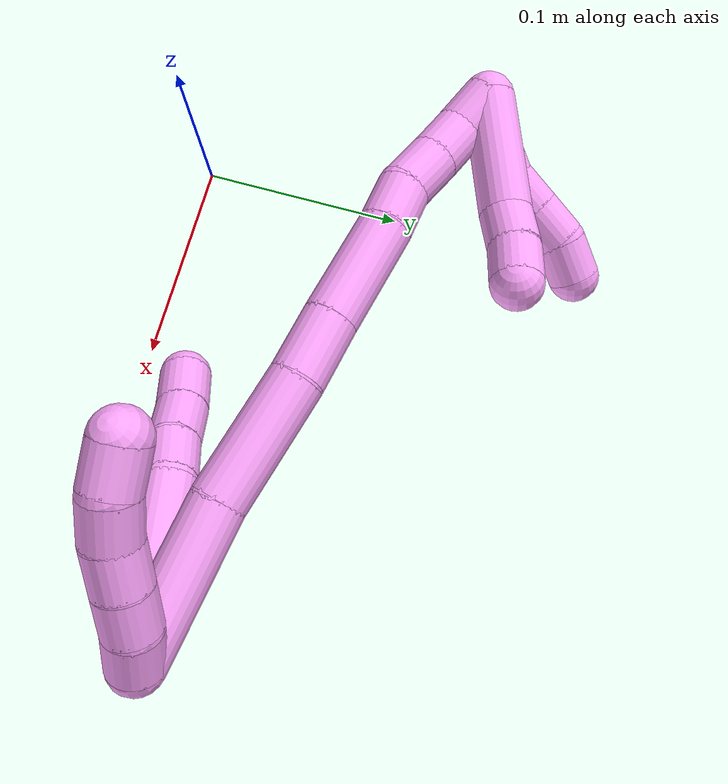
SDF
<sdf version="1.7">
 <world name="default">
  <model name="4">
   <static>0</static>
   <link name="4">
    <collision name="collision-cylinder-e_1_2_8">
     <pose>-0.032118 -0.023851 -0.001517 1.63431 -0.931087 -0.983037</pose>
     <geometry><cylinder><radius>0.0125</radius><length>0.080069</length></cylinder></geometry>
     <surface>
      <friction><ode><mu>1.16</mu><mu2>1.16</mu2><slip1>0</slip1><slip2>0</slip2></ode></friction>
      <contact><ode><kp>1e+06</kp><kd>1</kd><max_vel>0</max_vel><min_depth>0.001</min_depth></ode></contact>
     </surface>
    </collision>
    <visual name="visual-cylinder-e_1_2_8">
     <pose>-0.032118 -0.023851 -0.001517 1.63431 -0.931087 -0.983037</pose>
     <geometry><cylinder><radius>0.0125</radius><length>0.080069</length></cylinder></geometry>
     <material><ambient>1 0.65098 0.996078 1</ambient></material>
    </visual>
    <collision name="collision-cylinder-e_2_8_9">
     <pose>-0.07164 -0.055131 -0.005438 1.88378 -0.758741 -1.00271</pose>
     <geometry><cylinder><radius>0.0125</radius><length>0.021522</length></cylinder></geometry>
     <surface>
      <friction><ode><mu>1.16</mu><mu2>1.16</mu2><slip1>0</slip1><slip2>0</slip2></ode></friction>
      <contact><ode><kp>1e+06</kp><kd>1</kd><max_vel>0</max_vel><min_depth>0.001</min_depth></ode></contact>
     </surface>
    </collision>
    <visual name="visual-cylinder-e_2_8_9">
     <pose>-0.07164 -0.055131 -0.005438 1.88378 -0.758741 -1.00271</pose>
     <geometry><cylinder><radius>0.0125</radius><length>0.021522</length></cylinder></geometry>
     <material><ambient>1 0.65098 0.996078 1</ambient></material>
    </visual>
    <collision name="collision-cylinder-e_3_9_10">
     <pose>-0.08735 -0.070013 -0.012108 2.0906 -0.768835 -1.21827</pose>
     <geometry><cylinder><radius>0.0125</radius><length>0.023893</length></cylinder></geometry>
     <surface>
      <friction><ode><mu>1.16</mu><mu2>1.16</mu2><slip1>0</slip1><slip2>0</slip2></ode></friction>
      <contact><ode><kp>1e+06</kp><kd>1</kd><max_vel>0</max_vel><min_depth>0.001</min_depth></ode></contact>
     </surface>
    </collision>
    <visual name="visual-cylinder-e_3_9_10">
     <pose>-0.08735 -0.070013 -0.012108 2.0906 -0.768835 -1.21827</pose>
     <geometry><cylinder><radius>0.0125</radius><length>0.023893</length></cylinder></geometry>
     <material><ambient>1 0.65098 0.996078 1</ambient></material>
    </visual>
    <collision name="collision-cylinder-e_4_10_6">
     <pose>-0.103797 -0.085921 -0.019907 1.9667 -0.726295 -1.03717</pose>
     <geometry><cylinder><radius>0.0125</radius><length>0.024517</length></cylinder></geometry>
     <surface>
      <friction><ode><mu>1.16</mu><mu2>1.16</mu2><slip1>0</slip1><slip2>0</slip2></ode></friction>
      <contact><ode><kp>1e+06</kp><kd>1</kd><max_vel>0</max_vel><min_depth>0.001</min_depth></ode></contact>
     </surface>
    </collision>
    <visual name="visual-cylinder-e_4_10_6">
     <pose>-0.103797 -0.085921 -0.019907 1.9667 -0.726295 -1.03717</pose>
     <geometry><cylinder><radius>0.0125</radius><length>0.024517</length></cylinder></geometry>
     <material><ambient>1 0.65098 0.996078 1</ambient></material>
    </visual>
    <collision name="collision-cylinder-e_1_2_11">
     <pose>-0.004356 -0.000971 0.008949 0.108111 -0.45066 -0.024804</pose>
     <geometry><cylinder><radius>0.0125</radius><length>0.02</length></cylinder></geometry>
     <surface>
      <friction><ode><mu>1.16</mu><mu2>1.16</mu2><slip1>0</slip1><slip2>0</slip2></ode></friction>
      <contact><ode><kp>1e+06</kp><kd>1</kd><max_vel>0</max_vel><min_depth>0.001</min_depth></ode></contact>
     </surface>
    </collision>
    <visual name="visual-cylinder-e_1_2_11">
     <pose>-0.004356 -0.000971 0.008949 0.108111 -0.45066 -0.024804</pose>
     <geometry><cylinder><radius>0.0125</radius><length>0.02</length></cylinder></geometry>
     <material><ambient>1 0.65098 0.996078 1</ambient></material>
    </visual>
    <collision name="collision-cylinder-e_2_11_12">
     <pose>-0.012997 -0.00475 0.026486 0.315935 -0.442909 -0.071699</pose>
     <geometry><cylinder><radius>0.0125</radius><length>0.02</length></cylinder></geometry>
     <surface>
      <friction><ode><mu>1.16</mu><mu2>1.16</mu2><slip1>0</slip1><slip2>0</slip2></ode></friction>
      <contact><ode><kp>1e+06</kp><kd>1</kd><max_vel>0</max_vel><min_depth>0.001</min_depth></ode></contact>
     </surface>
    </collision>
    <visual name="visual-cylinder-e_2_11_12">
     <pose>-0.012997 -0.00475 0.026486 0.315935 -0.442909 -0.071699</pose>
     <geometry><cylinder><radius>0.0125</radius><length>0.02</length></cylinder></geometry>
     <material><ambient>1 0.65098 0.996078 1</ambient></material>
    </visual>
    <collision name="collision-cylinder-e_3_12_13">
     <pose>-0.021846 -0.011069 0.04325 0.405747 -0.473844 -0.099255</pose>
     <geometry><cylinder><radius>0.0125</radius><length>0.02</length></cylinder></geometry>
     <surface>
      <friction><ode><mu>1.16</mu><mu2>1.16</mu2><slip1>0</slip1><slip2>0</slip2></ode></friction>
      <contact><ode><kp>1e+06</kp><kd>1</kd><max_vel>0</max_vel><min_depth>0.001</min_depth></ode></contact>
     </surface>
    </collision>
    <visual name="visual-cylinder-e_3_12_13">
     <pose>-0.021846 -0.011069 0.04325 0.405747 -0.473844 -0.099255</pose>
     <geometry><cylinder><radius>0.0125</radius><length>0.02</length></cylinder></geometry>
     <material><ambient>1 0.65098 0.996078 1</ambient></material>
    </visual>
    <collision name="collision-cylinder-e_4_13_14">
     <pose>-0.031953 -0.016638 0.059489 0.249684 -0.587702 -0.075916</pose>
     <geometry><cylinder><radius>0.0125</radius><length>0.02</length></cylinder></geometry>
     <surface>
      <friction><ode><mu>1.16</mu><mu2>1.16</mu2><slip1>0</slip1><slip2>0</slip2></ode></friction>
      <contact><ode><kp>1e+06</kp><kd>1</kd><max_vel>0</max_vel><min_depth>0.001</min_depth></ode></contact>
     </surface>
    </collision>
    <visual name="visual-cylinder-e_4_13_14">
     <pose>-0.031953 -0.016638 0.059489 0.249684 -0.587702 -0.075916</pose>
     <geometry><cylinder><radius>0.0125</radius><length>0.02</length></cylinder></geometry>
     <material><ambient>1 0.65098 0.996078 1</ambient></material>
    </visual>
    <collision name="collision-cylinder-e_5_14_5">
     <pose>-0.04529 -0.021009 0.073378 0.378359 -0.893424 -0.182918</pose>
     <geometry><cylinder><radius>0.0125</radius><length>0.02</length></cylinder></geometry>
     <surface>
      <friction><ode><mu>1.16</mu><mu2>1.16</mu2><slip1>0</slip1><slip2>0</slip2></ode></friction>
      <contact><ode><kp>1e+06</kp><kd>1</kd><max_vel>0</max_vel><min_depth>0.001</min_depth></ode></contact>
     </surface>
    </collision>
    <visual name="visual-cylinder-e_5_14_5">
     <pose>-0.04529 -0.021009 0.073378 0.378359 -0.893424 -0.182918</pose>
     <geometry><cylinder><radius>0.0125</radius><length>0.02</length></cylinder></geometry>
     <material><ambient>1 0.65098 0.996078 1</ambient></material>
    </visual>
    <collision name="collision-cylinder-e_1_2_15">
     <pose>-0.032994 -0.006064 0.007976 0.650029 -1.27597 -0.48964</pose>
     <geometry><cylinder><radius>0.0125</radius><length>0.068964</length></cylinder></geometry>
     <surface>
      <friction><ode><mu>1.16</mu><mu2>1.16</mu2><slip1>0</slip1><slip2>0</slip2></ode></friction>
      <contact><ode><kp>1e+06</kp><kd>1</kd><max_vel>0</max_vel><min_depth>0.001</min_depth></ode></contact>
     </surface>
    </collision>
    <visual name="visual-cylinder-e_1_2_15">
     <pose>-0.032994 -0.006064 0.007976 0.650029 -1.27597 -0.48964</pose>
     <geometry><cylinder><radius>0.0125</radius><length>0.068964</length></cylinder></geometry>
     <material><ambient>1 0.65098 0.996078 1</ambient></material>
    </visual>
    <collision name="collision-cylinder-e_2_15_16">
     <pose>-0.095198 -0.014849 0.021021 0.492675 -1.37632 -0.407752</pose>
     <geometry><cylinder><radius>0.0125</radius><length>0.059543</length></cylinder></geometry>
     <surface>
      <friction><ode><mu>1.16</mu><mu2>1.16</mu2><slip1>0</slip1><slip2>0</slip2></ode></friction>
      <contact><ode><kp>1e+06</kp><kd>1</kd><max_vel>0</max_vel><min_depth>0.001</min_depth></ode></contact>
     </surface>
    </collision>
    <visual name="visual-cylinder-e_2_15_16">
     <pose>-0.095198 -0.014849 0.021021 0.492675 -1.37632 -0.407752</pose>
     <geometry><cylinder><radius>0.0125</radius><length>0.059543</length></cylinder></geometry>
     <material><ambient>1 0.65098 0.996078 1</ambient></material>
    </visual>
    <collision name="collision-cylinder-e_3_16_17">
     <pose>-0.139295 -0.020418 0.027841 1.01956 -1.34993 -0.841487</pose>
     <geometry><cylinder><radius>0.0125</radius><length>0.030514</length></cylinder></geometry>
     <surface>
      <friction><ode><mu>1.16</mu><mu2>1.16</mu2><slip1>0</slip1><slip2>0</slip2></ode></friction>
      <contact><ode><kp>1e+06</kp><kd>1</kd><max_vel>0</max_vel><min_depth>0.001</min_depth></ode></contact>
     </surface>
    </collision>
    <visual name="visual-cylinder-e_3_16_17">
     <pose>-0.139295 -0.020418 0.027841 1.01956 -1.34993 -0.841487</pose>
     <geometry><cylinder><radius>0.0125</radius><length>0.030514</length></cylinder></geometry>
     <material><ambient>1 0.65098 0.996078 1</ambient></material>
    </visual>
    <collision name="collision-cylinder-e_4_17_18">
     <pose>-0.179196 -0.027596 0.031849 1.09045 -1.37798 -0.926632</pose>
     <geometry><cylinder><radius>0.0125</radius><length>0.050975</length></cylinder></geometry>
     <surface>
      <friction><ode><mu>1.16</mu><mu2>1.16</mu2><slip1>0</slip1><slip2>0</slip2></ode></friction>
      <contact><ode><kp>1e+06</kp><kd>1</kd><max_vel>0</max_vel><min_depth>0.001</min_depth></ode></contact>
     </surface>
    </collision>
    <visual name="visual-cylinder-e_4_17_18">
     <pose>-0.179196 -0.027596 0.031849 1.09045 -1.37798 -0.926632</pose>
     <geometry><cylinder><radius>0.0125</radius><length>0.050975</length></cylinder></geometry>
     <material><ambient>1 0.65098 0.996078 1</ambient></material>
    </visual>
    <collision name="collision-cylinder-e_5_18_19">
     <pose>-0.214878 -0.03489 0.034796 1.34185 -1.29294 -1.07938</pose>
     <geometry><cylinder><radius>0.0125</radius><length>0.022184</length></cylinder></geometry>
     <surface>
      <friction><ode><mu>1.16</mu><mu2>1.16</mu2><slip1>0</slip1><slip2>0</slip2></ode></friction>
      <contact><ode><kp>1e+06</kp><kd>1</kd><max_vel>0</max_vel><min_depth>0.001</min_depth></ode></contact>
     </surface>
    </collision>
    <visual name="visual-cylinder-e_5_18_19">
     <pose>-0.214878 -0.03489 0.034796 1.34185 -1.29294 -1.07938</pose>
     <geometry><cylinder><radius>0.0125</radius><length>0.022184</length></cylinder></geometry>
     <material><ambient>1 0.65098 0.996078 1</ambient></material>
    </visual>
    <collision name="collision-cylinder-e_6_19_20">
     <pose>-0.237214 -0.038325 0.034362 2.74418 -1.46671 -2.70183</pose>
     <geometry><cylinder><radius>0.0125</radius><length>0.023466</length></cylinder></geometry>
     <surface>
      <friction><ode><mu>1.16</mu><mu2>1.16</mu2><slip1>0</slip1><slip2>0</slip2></ode></friction>
      <contact><ode><kp>1e+06</kp><kd>1</kd><max_vel>0</max_vel><min_depth>0.001</min_depth></ode></contact>
     </surface>
    </collision>
    <visual name="visual-cylinder-e_6_19_20">
     <pose>-0.237214 -0.038325 0.034362 2.74418 -1.46671 -2.70183</pose>
     <geometry><cylinder><radius>0.0125</radius><length>0.023466</length></cylinder></geometry>
     <material><ambient>1 0.65098 0.996078 1</ambient></material>
    </visual>
    <collision name="collision-cylinder-e_7_20_21">
     <pose>-0.259931 -0.039426 0.032542 2.40673 -1.48605 -2.34804</pose>
     <geometry><cylinder><radius>0.0125</radius><length>0.022177</length></cylinder></geometry>
     <surface>
      <friction><ode><mu>1.16</mu><mu2>1.16</mu2><slip1>0</slip1><slip2>0</slip2></ode></friction>
      <contact><ode><kp>1e+06</kp><kd>1</kd><max_vel>0</max_vel><min_depth>0.001</min_depth></ode></contact>
     </surface>
    </collision>
    <visual name="visual-cylinder-e_7_20_21">
     <pose>-0.259931 -0.039426 0.032542 2.40673 -1.48605 -2.34804</pose>
     <geometry><cylinder><radius>0.0125</radius><length>0.022177</length></cylinder></geometry>
     <material><ambient>1 0.65098 0.996078 1</ambient></material>
    </visual>
    <collision name="collision-cylinder-e_8_21_1">
     <pose>-0.281854 -0.039184 0.03384 -0.412001 -1.37323 0.33927</pose>
     <geometry><cylinder><radius>0.0125</radius><length>0.022179</length></cylinder></geometry>
     <surface>
      <friction><ode><mu>1.16</mu><mu2>1.16</mu2><slip1>0</slip1><slip2>0</slip2></ode></friction>
      <contact><ode><kp>1e+06</kp><kd>1</kd><max_vel>0</max_vel><min_depth>0.001</min_depth></ode></contact>
     </surface>
    </collision>
    <visual name="visual-cylinder-e_8_21_1">
     <pose>-0.281854 -0.039184 0.03384 -0.412001 -1.37323 0.33927</pose>
     <geometry><cylinder><radius>0.0125</radius><length>0.022179</length></cylinder></geometry>
     <material><ambient>1 0.65098 0.996078 1</ambient></material>
    </visual>
    <collision name="collision-cylinder-e_1_1_22">
     <pose>-0.287846 -0.03415 0.028163 -2.64444 0.509955 -1.59733</pose>
     <geometry><cylinder><radius>0.0125</radius><length>0.02</length></cylinder></geometry>
     <surface>
      <friction><ode><mu>1.16</mu><mu2>1.16</mu2><slip1>0</slip1><slip2>0</slip2></ode></friction>
      <contact><ode><kp>1e+06</kp><kd>1</kd><max_vel>0</max_vel><min_depth>0.001</min_depth></ode></contact>
     </surface>
    </collision>
    <visual name="visual-cylinder-e_1_1_22">
     <pose>-0.287846 -0.03415 0.028163 -2.64444 0.509955 -1.59733</pose>
     <geometry><cylinder><radius>0.0125</radius><length>0.02</length></cylinder></geometry>
     <material><ambient>1 0.65098 0.996078 1</ambient></material>
    </visual>
    <collision name="collision-cylinder-e_2_22_23">
     <pose>-0.279564 -0.023589 0.013601 -2.39329 0.346981 -0.839603</pose>
     <geometry><cylinder><radius>0.0125</radius><length>0.02</length></cylinder></geometry>
     <surface>
      <friction><ode><mu>1.16</mu><mu2>1.16</mu2><slip1>0</slip1><slip2>0</slip2></ode></friction>
      <contact><ode><kp>1e+06</kp><kd>1</kd><max_vel>0</max_vel><min_depth>0.001</min_depth></ode></contact>
     </surface>
    </collision>
    <visual name="visual-cylinder-e_2_22_23">
     <pose>-0.279564 -0.023589 0.013601 -2.39329 0.346981 -0.839603</pose>
     <geometry><cylinder><radius>0.0125</radius><length>0.02</length></cylinder></geometry>
     <material><ambient>1 0.65098 0.996078 1</ambient></material>
    </visual>
    <collision name="collision-cylinder-e_3_23_24">
     <pose>-0.275828 -0.009485 0.000344 -2.26117 0.033515 -0.071128</pose>
     <geometry><cylinder><radius>0.0125</radius><length>0.02</length></cylinder></geometry>
     <surface>
      <friction><ode><mu>1.16</mu><mu2>1.16</mu2><slip1>0</slip1><slip2>0</slip2></ode></friction>
      <contact><ode><kp>1e+06</kp><kd>1</kd><max_vel>0</max_vel><min_depth>0.001</min_depth></ode></contact>
     </surface>
    </collision>
    <visual name="visual-cylinder-e_3_23_24">
     <pose>-0.275828 -0.009485 0.000344 -2.26117 0.033515 -0.071128</pose>
     <geometry><cylinder><radius>0.0125</radius><length>0.02</length></cylinder></geometry>
     <material><ambient>1 0.65098 0.996078 1</ambient></material>
    </visual>
    <collision name="collision-cylinder-e_4_24_25">
     <pose>-0.274933 0.006073 -0.012187 -2.23654 0.056087 -0.115266</pose>
     <geometry><cylinder><radius>0.0125</radius><length>0.02</length></cylinder></geometry>
     <surface>
      <friction><ode><mu>1.16</mu><mu2>1.16</mu2><slip1>0</slip1><slip2>0</slip2></ode></friction>
      <contact><ode><kp>1e+06</kp><kd>1</kd><max_vel>0</max_vel><min_depth>0.001</min_depth></ode></contact>
     </surface>
    </collision>
    <visual name="visual-cylinder-e_4_24_25">
     <pose>-0.274933 0.006073 -0.012187 -2.23654 0.056087 -0.115266</pose>
     <geometry><cylinder><radius>0.0125</radius><length>0.02</length></cylinder></geometry>
     <material><ambient>1 0.65098 0.996078 1</ambient></material>
    </visual>
    <collision name="collision-cylinder-e_5_25_4">
     <pose>-0.271699 0.019771 -0.026014 -2.48977 0.270635 -0.765924</pose>
     <geometry><cylinder><radius>0.0125</radius><length>0.02</length></cylinder></geometry>
     <surface>
      <friction><ode><mu>1.16</mu><mu2>1.16</mu2><slip1>0</slip1><slip2>0</slip2></ode></friction>
      <contact><ode><kp>1e+06</kp><kd>1</kd><max_vel>0</max_vel><min_depth>0.001</min_depth></ode></contact>
     </surface>
    </collision>
    <visual name="visual-cylinder-e_5_25_4">
     <pose>-0.271699 0.019771 -0.026014 -2.48977 0.270635 -0.765924</pose>
     <geometry><cylinder><radius>0.0125</radius><length>0.02</length></cylinder></geometry>
     <material><ambient>1 0.65098 0.996078 1</ambient></material>
    </visual>
    <collision name="collision-cylinder-e_1_1_26">
     <pose>-0.272115 -0.019454 0.025561 -2.06962 0.764903 -1.19054</pose>
     <geometry><cylinder><radius>0.0125</radius><length>0.059534</length></cylinder></geometry>
     <surface>
      <friction><ode><mu>1.16</mu><mu2>1.16</mu2><slip1>0</slip1><slip2>0</slip2></ode></friction>
      <contact><ode><kp>1e+06</kp><kd>1</kd><max_vel>0</max_vel><min_depth>0.001</min_depth></ode></contact>
     </surface>
    </collision>
    <visual name="visual-cylinder-e_1_1_26">
     <pose>-0.272115 -0.019454 0.025561 -2.06962 0.764903 -1.19054</pose>
     <geometry><cylinder><radius>0.0125</radius><length>0.059534</length></cylinder></geometry>
     <material><ambient>1 0.65098 0.996078 1</ambient></material>
    </visual>
    <collision name="collision-cylinder-e_2_26_27">
     <pose>-0.244334 0.00665 0.015127 -1.59294 0.779935 -0.795634</pose>
     <geometry><cylinder><radius>0.0125</radius><length>0.020387</length></cylinder></geometry>
     <surface>
      <friction><ode><mu>1.16</mu><mu2>1.16</mu2><slip1>0</slip1><slip2>0</slip2></ode></friction>
      <contact><ode><kp>1e+06</kp><kd>1</kd><max_vel>0</max_vel><min_depth>0.001</min_depth></ode></contact>
     </surface>
    </collision>
    <visual name="visual-cylinder-e_2_26_27">
     <pose>-0.244334 0.00665 0.015127 -1.59294 0.779935 -0.795634</pose>
     <geometry><cylinder><radius>0.0125</radius><length>0.020387</length></cylinder></geometry>
     <material><ambient>1 0.65098 0.996078 1</ambient></material>
    </visual>
    <collision name="collision-cylinder-e_3_27_3">
     <pose>-0.229213 0.020023 0.015061 -1.55535 0.91424 -0.902064</pose>
     <geometry><cylinder><radius>0.0125</radius><length>0.020079</length></cylinder></geometry>
     <surface>
      <friction><ode><mu>1.16</mu><mu2>1.16</mu2><slip1>0</slip1><slip2>0</slip2></ode></friction>
      <contact><ode><kp>1e+06</kp><kd>1</kd><max_vel>0</max_vel><min_depth>0.001</min_depth></ode></contact>
     </surface>
    </collision>
    <visual name="visual-cylinder-e_3_27_3">
     <pose>-0.229213 0.020023 0.015061 -1.55535 0.91424 -0.902064</pose>
     <geometry><cylinder><radius>0.0125</radius><length>0.020079</length></cylinder></geometry>
     <material><ambient>1 0.65098 0.996078 1</ambient></material>
    </visual>
    <collision name="collision-sphere-3">
     <pose>-0.221261 0.02615 0.015156 0 -0 0</pose>
     <geometry><sphere><radius>0.0125</radius></sphere></geometry>
     <surface>
      <friction><ode><mu>1.16</mu><mu2>1.16</mu2><slip1>0</slip1><slip2>0</slip2></ode></friction>
      <contact><ode><kp>1e+06</kp><kd>1</kd><max_vel>0</max_vel><min_depth>0.001</min_depth></ode></contact>
     </surface>
    </collision>
    <visual name="visual-sphere-3">
     <pose>-0.221261 0.02615 0.015156 0 -0 0</pose>
     <geometry><sphere><radius>0.0125</radius></sphere></geometry>
     <material><ambient>1 0.65098 0.996078 1</ambient></material>
    </visual>
    <collision name="collision-sphere-27">
     <pose>-0.237165 0.013896 0.014966 0 -0 0</pose>
     <geometry><sphere><radius>0.0125</radius></sphere></geometry>
     <surface>
      <friction><ode><mu>1.16</mu><mu2>1.16</mu2><slip1>0</slip1><slip2>0</slip2></ode></friction>
      <contact><ode><kp>1e+06</kp><kd>1</kd><max_vel>0</max_vel><min_depth>0.001</min_depth></ode></contact>
     </surface>
    </collision>
    <visual name="visual-sphere-27">
     <pose>-0.237165 0.013896 0.014966 0 -0 0</pose>
     <geometry><sphere><radius>0.0125</radius></sphere></geometry>
     <material><ambient>1 0.65098 0.996078 1</ambient></material>
    </visual>
    <collision name="collision-sphere-26">
     <pose>-0.251502 -0.000596 0.015287 0 -0 0</pose>
     <geometry><sphere><radius>0.0125</radius></sphere></geometry>
     <surface>
      <friction><ode><mu>1.16</mu><mu2>1.16</mu2><slip1>0</slip1><slip2>0</slip2></ode></friction>
      <contact><ode><kp>1e+06</kp><kd>1</kd><max_vel>0</max_vel><min_depth>0.001</min_depth></ode></contact>
     </surface>
    </collision>
    <visual name="visual-sphere-26">
     <pose>-0.251502 -0.000596 0.015287 0 -0 0</pose>
     <geometry><sphere><radius>0.0125</radius></sphere></geometry>
     <material><ambient>1 0.65098 0.996078 1</ambient></material>
    </visual>
    <collision name="collision-sphere-4">
     <pose>-0.269025 0.025616 -0.033675 0 -0 0</pose>
     <geometry><sphere><radius>0.0125</radius></sphere></geometry>
     <surface>
      <friction><ode><mu>1.16</mu><mu2>1.16</mu2><slip1>0</slip1><slip2>0</slip2></ode></friction>
      <contact><ode><kp>1e+06</kp><kd>1</kd><max_vel>0</max_vel><min_depth>0.001</min_depth></ode></contact>
     </surface>
    </collision>
    <visual name="visual-sphere-4">
     <pose>-0.269025 0.025616 -0.033675 0 -0 0</pose>
     <geometry><sphere><radius>0.0125</radius></sphere></geometry>
     <material><ambient>1 0.65098 0.996078 1</ambient></material>
    </visual>
    <collision name="collision-sphere-25">
     <pose>-0.274372 0.013925 -0.018354 0 -0 0</pose>
     <geometry><sphere><radius>0.0125</radius></sphere></geometry>
     <surface>
      <friction><ode><mu>1.16</mu><mu2>1.16</mu2><slip1>0</slip1><slip2>0</slip2></ode></friction>
      <contact><ode><kp>1e+06</kp><kd>1</kd><max_vel>0</max_vel><min_depth>0.001</min_depth></ode></contact>
     </surface>
    </collision>
    <visual name="visual-sphere-25">
     <pose>-0.274372 0.013925 -0.018354 0 -0 0</pose>
     <geometry><sphere><radius>0.0125</radius></sphere></geometry>
     <material><ambient>1 0.65098 0.996078 1</ambient></material>
    </visual>
    <collision name="collision-sphere-24">
     <pose>-0.275493 -0.001779 -0.00602 0 -0 0</pose>
     <geometry><sphere><radius>0.0125</radius></sphere></geometry>
     <surface>
      <friction><ode><mu>1.16</mu><mu2>1.16</mu2><slip1>0</slip1><slip2>0</slip2></ode></friction>
      <contact><ode><kp>1e+06</kp><kd>1</kd><max_vel>0</max_vel><min_depth>0.001</min_depth></ode></contact>
     </surface>
    </collision>
    <visual name="visual-sphere-24">
     <pose>-0.275493 -0.001779 -0.00602 0 -0 0</pose>
     <geometry><sphere><radius>0.0125</radius></sphere></geometry>
     <material><ambient>1 0.65098 0.996078 1</ambient></material>
    </visual>
    <collision name="collision-sphere-23">
     <pose>-0.276163 -0.017191 0.006709 0 -0 0</pose>
     <geometry><sphere><radius>0.0125</radius></sphere></geometry>
     <surface>
      <friction><ode><mu>1.16</mu><mu2>1.16</mu2><slip1>0</slip1><slip2>0</slip2></ode></friction>
      <contact><ode><kp>1e+06</kp><kd>1</kd><max_vel>0</max_vel><min_depth>0.001</min_depth></ode></contact>
     </surface>
    </collision>
    <visual name="visual-sphere-23">
     <pose>-0.276163 -0.017191 0.006709 0 -0 0</pose>
     <geometry><sphere><radius>0.0125</radius></sphere></geometry>
     <material><ambient>1 0.65098 0.996078 1</ambient></material>
    </visual>
    <collision name="collision-sphere-22">
     <pose>-0.282965 -0.029988 0.020492 0 -0 0</pose>
     <geometry><sphere><radius>0.0125</radius></sphere></geometry>
     <surface>
      <friction><ode><mu>1.16</mu><mu2>1.16</mu2><slip1>0</slip1><slip2>0</slip2></ode></friction>
      <contact><ode><kp>1e+06</kp><kd>1</kd><max_vel>0</max_vel><min_depth>0.001</min_depth></ode></contact>
     </surface>
    </collision>
    <visual name="visual-sphere-22">
     <pose>-0.282965 -0.029988 0.020492 0 -0 0</pose>
     <geometry><sphere><radius>0.0125</radius></sphere></geometry>
     <material><ambient>1 0.65098 0.996078 1</ambient></material>
    </visual>
    <collision name="collision-sphere-1">
     <pose>-0.292727 -0.038312 0.035835 0 -0 0</pose>
     <geometry><sphere><radius>0.0125</radius></sphere></geometry>
     <surface>
      <friction><ode><mu>1.16</mu><mu2>1.16</mu2><slip1>0</slip1><slip2>0</slip2></ode></friction>
      <contact><ode><kp>1e+06</kp><kd>1</kd><max_vel>0</max_vel><min_depth>0.001</min_depth></ode></contact>
     </surface>
    </collision>
    <visual name="visual-sphere-1">
     <pose>-0.292727 -0.038312 0.035835 0 -0 0</pose>
     <geometry><sphere><radius>0.0125</radius></sphere></geometry>
     <material><ambient>1 0.65098 0.996078 1</ambient></material>
    </visual>
    <collision name="collision-sphere-21">
     <pose>-0.27098 -0.040056 0.031846 0 -0 0</pose>
     <geometry><sphere><radius>0.0125</radius></sphere></geometry>
     <surface>
      <friction><ode><mu>1.16</mu><mu2>1.16</mu2><slip1>0</slip1><slip2>0</slip2></ode></friction>
      <contact><ode><kp>1e+06</kp><kd>1</kd><max_vel>0</max_vel><min_depth>0.001</min_depth></ode></contact>
     </surface>
    </collision>
    <visual name="visual-sphere-21">
     <pose>-0.27098 -0.040056 0.031846 0 -0 0</pose>
     <geometry><sphere><radius>0.0125</radius></sphere></geometry>
     <material><ambient>1 0.65098 0.996078 1</ambient></material>
    </visual>
    <collision name="collision-sphere-11">
     <pose>-0.008711 -0.001943 0.017898 0 -0 0</pose>
     <geometry><sphere><radius>0.0125</radius></sphere></geometry>
     <surface>
      <friction><ode><mu>1.16</mu><mu2>1.16</mu2><slip1>0</slip1><slip2>0</slip2></ode></friction>
      <contact><ode><kp>1e+06</kp><kd>1</kd><max_vel>0</max_vel><min_depth>0.001</min_depth></ode></contact>
     </surface>
    </collision>
    <visual name="visual-sphere-11">
     <pose>-0.008711 -0.001943 0.017898 0 -0 0</pose>
     <geometry><sphere><radius>0.0125</radius></sphere></geometry>
     <material><ambient>1 0.65098 0.996078 1</ambient></material>
    </visual>
    <collision name="collision-sphere-6">
     <pose>-0.111938 -0.094377 -0.023441 0 -0 0</pose>
     <geometry><sphere><radius>0.0125</radius></sphere></geometry>
     <surface>
      <friction><ode><mu>1.16</mu><mu2>1.16</mu2><slip1>0</slip1><slip2>0</slip2></ode></friction>
      <contact><ode><kp>1e+06</kp><kd>1</kd><max_vel>0</max_vel><min_depth>0.001</min_depth></ode></contact>
     </surface>
    </collision>
    <visual name="visual-sphere-6">
     <pose>-0.111938 -0.094377 -0.023441 0 -0 0</pose>
     <geometry><sphere><radius>0.0125</radius></sphere></geometry>
     <material><ambient>1 0.65098 0.996078 1</ambient></material>
    </visual>
    <collision name="collision-sphere-10">
     <pose>-0.095657 -0.077465 -0.016373 0 -0 0</pose>
     <geometry><sphere><radius>0.0125</radius></sphere></geometry>
     <surface>
      <friction><ode><mu>1.16</mu><mu2>1.16</mu2><slip1>0</slip1><slip2>0</slip2></ode></friction>
      <contact><ode><kp>1e+06</kp><kd>1</kd><max_vel>0</max_vel><min_depth>0.001</min_depth></ode></contact>
     </surface>
    </collision>
    <visual name="visual-sphere-10">
     <pose>-0.095657 -0.077465 -0.016373 0 -0 0</pose>
     <geometry><sphere><radius>0.0125</radius></sphere></geometry>
     <material><ambient>1 0.65098 0.996078 1</ambient></material>
    </visual>
    <collision name="collision-sphere-9">
     <pose>-0.079044 -0.062561 -0.007843 0 -0 0</pose>
     <geometry><sphere><radius>0.0125</radius></sphere></geometry>
     <surface>
      <friction><ode><mu>1.16</mu><mu2>1.16</mu2><slip1>0</slip1><slip2>0</slip2></ode></friction>
      <contact><ode><kp>1e+06</kp><kd>1</kd><max_vel>0</max_vel><min_depth>0.001</min_depth></ode></contact>
     </surface>
    </collision>
    <visual name="visual-sphere-9">
     <pose>-0.079044 -0.062561 -0.007843 0 -0 0</pose>
     <geometry><sphere><radius>0.0125</radius></sphere></geometry>
     <material><ambient>1 0.65098 0.996078 1</ambient></material>
    </visual>
    <collision name="collision-sphere-2">
     <geometry><sphere><radius>0.0125</radius></sphere></geometry>
     <surface>
      <friction><ode><mu>1.16</mu><mu2>1.16</mu2><slip1>0</slip1><slip2>0</slip2></ode></friction>
      <contact><ode><kp>1e+06</kp><kd>1</kd><max_vel>0</max_vel><min_depth>0.001</min_depth></ode></contact>
     </surface>
    </collision>
    <visual name="visual-sphere-2">
     <geometry><sphere><radius>0.0125</radius></sphere></geometry>
     <material><ambient>1 0.65098 0.996078 1</ambient></material>
    </visual>
    <collision name="collision-sphere-19">
     <pose>-0.225544 -0.037853 0.035486 0 -0 0</pose>
     <geometry><sphere><radius>0.0125</radius></sphere></geometry>
     <surface>
      <friction><ode><mu>1.16</mu><mu2>1.16</mu2><slip1>0</slip1><slip2>0</slip2></ode></friction>
      <contact><ode><kp>1e+06</kp><kd>1</kd><max_vel>0</max_vel><min_depth>0.001</min_depth></ode></contact>
     </surface>
    </collision>
    <visual name="visual-sphere-19">
     <pose>-0.225544 -0.037853 0.035486 0 -0 0</pose>
     <geometry><sphere><radius>0.0125</radius></sphere></geometry>
     <material><ambient>1 0.65098 0.996078 1</ambient></material>
    </visual>
    <collision name="collision-sphere-8">
     <pose>-0.064237 -0.047701 -0.003034 0 -0 0</pose>
     <geometry><sphere><radius>0.0125</radius></sphere></geometry>
     <surface>
      <friction><ode><mu>1.16</mu><mu2>1.16</mu2><slip1>0</slip1><slip2>0</slip2></ode></friction>
      <contact><ode><kp>1e+06</kp><kd>1</kd><max_vel>0</max_vel><min_depth>0.001</min_depth></ode></contact>
     </surface>
    </collision>
    <visual name="visual-sphere-8">
     <pose>-0.064237 -0.047701 -0.003034 0 -0 0</pose>
     <geometry><sphere><radius>0.0125</radius></sphere></geometry>
     <material><ambient>1 0.65098 0.996078 1</ambient></material>
    </visual>
    <collision name="collision-sphere-12">
     <pose>-0.017283 -0.007557 0.035074 0 -0 0</pose>
     <geometry><sphere><radius>0.0125</radius></sphere></geometry>
     <surface>
      <friction><ode><mu>1.16</mu><mu2>1.16</mu2><slip1>0</slip1><slip2>0</slip2></ode></friction>
      <contact><ode><kp>1e+06</kp><kd>1</kd><max_vel>0</max_vel><min_depth>0.001</min_depth></ode></contact>
     </surface>
    </collision>
    <visual name="visual-sphere-12">
     <pose>-0.017283 -0.007557 0.035074 0 -0 0</pose>
     <geometry><sphere><radius>0.0125</radius></sphere></geometry>
     <material><ambient>1 0.65098 0.996078 1</ambient></material>
    </visual>
    <collision name="collision-sphere-13">
     <pose>-0.026409 -0.014581 0.051425 0 -0 0</pose>
     <geometry><sphere><radius>0.0125</radius></sphere></geometry>
     <surface>
      <friction><ode><mu>1.16</mu><mu2>1.16</mu2><slip1>0</slip1><slip2>0</slip2></ode></friction>
      <contact><ode><kp>1e+06</kp><kd>1</kd><max_vel>0</max_vel><min_depth>0.001</min_depth></ode></contact>
     </surface>
    </collision>
    <visual name="visual-sphere-13">
     <pose>-0.026409 -0.014581 0.051425 0 -0 0</pose>
     <geometry><sphere><radius>0.0125</radius></sphere></geometry>
     <material><ambient>1 0.65098 0.996078 1</ambient></material>
    </visual>
    <collision name="collision-sphere-14">
     <pose>-0.037498 -0.018694 0.067554 0 -0 0</pose>
     <geometry><sphere><radius>0.0125</radius></sphere></geometry>
     <surface>
      <friction><ode><mu>1.16</mu><mu2>1.16</mu2><slip1>0</slip1><slip2>0</slip2></ode></friction>
      <contact><ode><kp>1e+06</kp><kd>1</kd><max_vel>0</max_vel><min_depth>0.001</min_depth></ode></contact>
     </surface>
    </collision>
    <visual name="visual-sphere-14">
     <pose>-0.037498 -0.018694 0.067554 0 -0 0</pose>
     <geometry><sphere><radius>0.0125</radius></sphere></geometry>
     <material><ambient>1 0.65098 0.996078 1</ambient></material>
    </visual>
    <collision name="collision-sphere-5">
     <pose>-0.053082 -0.023325 0.079202 0 -0 0</pose>
     <geometry><sphere><radius>0.0125</radius></sphere></geometry>
     <surface>
      <friction><ode><mu>1.16</mu><mu2>1.16</mu2><slip1>0</slip1><slip2>0</slip2></ode></friction>
      <contact><ode><kp>1e+06</kp><kd>1</kd><max_vel>0</max_vel><min_depth>0.001</min_depth></ode></contact>
     </surface>
    </collision>
    <visual name="visual-sphere-5">
     <pose>-0.053082 -0.023325 0.079202 0 -0 0</pose>
     <geometry><sphere><radius>0.0125</radius></sphere></geometry>
     <material><ambient>1 0.65098 0.996078 1</ambient></material>
    </visual>
    <collision name="collision-sphere-15">
     <pose>-0.065988 -0.012128 0.015952 0 -0 0</pose>
     <geometry><sphere><radius>0.0125</radius></sphere></geometry>
     <surface>
      <friction><ode><mu>1.16</mu><mu2>1.16</mu2><slip1>0</slip1><slip2>0</slip2></ode></friction>
      <contact><ode><kp>1e+06</kp><kd>1</kd><max_vel>0</max_vel><min_depth>0.001</min_depth></ode></contact>
     </surface>
    </collision>
    <visual name="visual-sphere-15">
     <pose>-0.065988 -0.012128 0.015952 0 -0 0</pose>
     <geometry><sphere><radius>0.0125</radius></sphere></geometry>
     <material><ambient>1 0.65098 0.996078 1</ambient></material>
    </visual>
    <collision name="collision-sphere-16">
     <pose>-0.124409 -0.01757 0.026091 0 -0 0</pose>
     <geometry><sphere><radius>0.0125</radius></sphere></geometry>
     <surface>
      <friction><ode><mu>1.16</mu><mu2>1.16</mu2><slip1>0</slip1><slip2>0</slip2></ode></friction>
      <contact><ode><kp>1e+06</kp><kd>1</kd><max_vel>0</max_vel><min_depth>0.001</min_depth></ode></contact>
     </surface>
    </collision>
    <visual name="visual-sphere-16">
     <pose>-0.124409 -0.01757 0.026091 0 -0 0</pose>
     <geometry><sphere><radius>0.0125</radius></sphere></geometry>
     <material><ambient>1 0.65098 0.996078 1</ambient></material>
    </visual>
    <collision name="collision-sphere-17">
     <pose>-0.154181 -0.023265 0.029592 0 -0 0</pose>
     <geometry><sphere><radius>0.0125</radius></sphere></geometry>
     <surface>
      <friction><ode><mu>1.16</mu><mu2>1.16</mu2><slip1>0</slip1><slip2>0</slip2></ode></friction>
      <contact><ode><kp>1e+06</kp><kd>1</kd><max_vel>0</max_vel><min_depth>0.001</min_depth></ode></contact>
     </surface>
    </collision>
    <visual name="visual-sphere-17">
     <pose>-0.154181 -0.023265 0.029592 0 -0 0</pose>
     <geometry><sphere><radius>0.0125</radius></sphere></geometry>
     <material><ambient>1 0.65098 0.996078 1</ambient></material>
    </visual>
    <collision name="collision-sphere-18">
     <pose>-0.204211 -0.031927 0.034105 0 -0 0</pose>
     <geometry><sphere><radius>0.0125</radius></sphere></geometry>
     <surface>
      <friction><ode><mu>1.16</mu><mu2>1.16</mu2><slip1>0</slip1><slip2>0</slip2></ode></friction>
      <contact><ode><kp>1e+06</kp><kd>1</kd><max_vel>0</max_vel><min_depth>0.001</min_depth></ode></contact>
     </surface>
    </collision>
    <visual name="visual-sphere-18">
     <pose>-0.204211 -0.031927 0.034105 0 -0 0</pose>
     <geometry><sphere><radius>0.0125</radius></sphere></geometry>
     <material><ambient>1 0.65098 0.996078 1</ambient></material>
    </visual>
    <collision name="collision-sphere-20">
     <pose>-0.248883 -0.038797 0.033238 0 -0 0</pose>
     <geometry><sphere><radius>0.0125</radius></sphere></geometry>
     <surface>
      <friction><ode><mu>1.16</mu><mu2>1.16</mu2><slip1>0</slip1><slip2>0</slip2></ode></friction>
      <contact><ode><kp>1e+06</kp><kd>1</kd><max_vel>0</max_vel><min_depth>0.001</min_depth></ode></contact>
     </surface>
    </collision>
    <visual name="visual-sphere-20">
     <pose>-0.248883 -0.038797 0.033238 0 -0 0</pose>
     <geometry><sphere><radius>0.0125</radius></sphere></geometry>
     <material><ambient>1 0.65098 0.996078 1</ambient></material>
    </visual>
    <inertial>
     <pose>-0.144443 -0.021548 0.017001 0 -0 0</pose>
     <mass>0.75</mass>
     <inertia>
      <ixx>-3.4e-05</ixx>
      <ixy>0</ixy>
      <ixz>0</ixz>
      <iyy>6.1e-05</iyy>
      <iyz>0</iyz>
      <izz>0.000123</izz>
     </inertia>
    </inertial>
   </link>
   <pose>0.237182 0.05754 0.080138 0.317536 -0.15316 -0.413643</pose>
  </model>
 </world>
</sdf>
